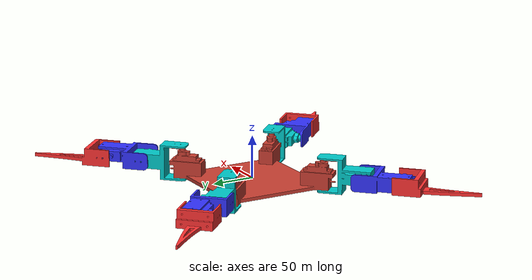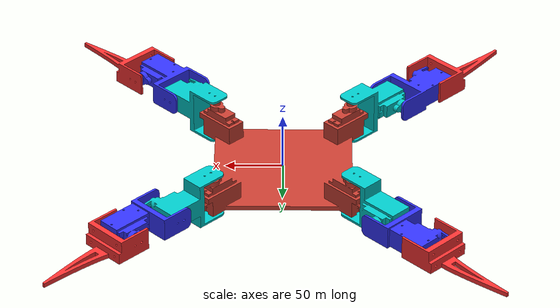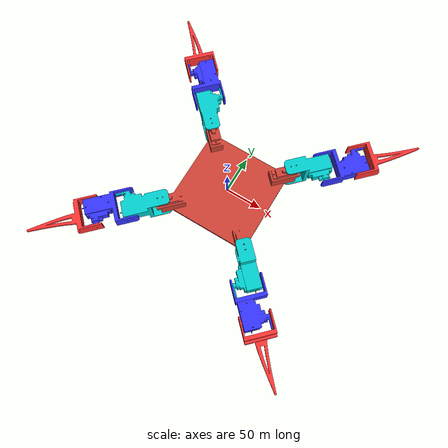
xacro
<?xml version="1.0"?>
<robot xmlns:xacro="http://www.ros.org/wiki/xacro" name="quadruped">

  <link name="world"></link>

  <joint name="base_joint" type="fixed">
    <parent link="world" />
    <child link="robot_base_link" />
    <origin xyz="0 0 0" rpy="0 0 0" />
    <axis xyz="1 0 0" />
  </joint>

  <link name="robot_base_link">
    <visual>
      <origin xyz="0 0 0" rpy="0 0 0" />
      <geometry>
        <mesh filename="file://$(find quadruped_description)/meshes/robot_base.stl" />
      </geometry>
      <material name="green">
        <color rgba="0.8 0.25 0.2 1" />
      </material>
    </visual>
    <collision>
      <origin xyz="0 0 0" rpy="0 0 0" />
      <geometry>
        <box size="120 120 24" />
      </geometry>q </collision>
    <inertial>
      <mass value="12" />
      <origin xyz="0 0 0" />
      <inertia ixx="2.26" ixy="0.0" ixz="0.0" iyy="6.26" iyz="0.0" izz="8.5" />
    </inertial>
  </link>

  <xacro:include filename="$(find quadruped_description)/urdf/mech/leg.urdf.xacro" />
  <xacro:leg parent="robot_base_link" uid="fr">
    <origin xyz="-58.77 58.981 12.432" rpy="0 0 ${-pi/4}"/>
  </xacro:leg>

  <xacro:include filename="$(find quadruped_description)/urdf/mech/leg.urdf.xacro" />
  <xacro:leg parent="robot_base_link" uid="fl">
    <origin xyz="58.77 58.981 12.432" rpy="0 0 ${-3*pi/4}"/>
  </xacro:leg>

  <xacro:include filename="$(find quadruped_description)/urdf/mech/leg.urdf.xacro" />
  <xacro:leg parent="robot_base_link" uid="br">
    <origin xyz="-58.77 -58.981 12.432" rpy="0 0 ${pi/4}"/>
  </xacro:leg>

  <xacro:include filename="$(find quadruped_description)/urdf/mech/leg.urdf.xacro" />
  <xacro:leg parent="robot_base_link" uid="bl">
    <origin xyz="58.77 -58.981 12.432" rpy="0 0 ${3*pi/4}"/>
  </xacro:leg>

</robot>

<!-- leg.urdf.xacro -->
<robot xmlns:xacro="http://www.ros.org/wiki/xacro">

  <xacro:macro name="leg" params="parent uid *origin">

    <joint name="body_link1_joint_${uid}" type="revolute">
      <parent link="${parent}"/>
      <child link="leg_${uid}_link_1" />
      <xacro:insert_block name="origin"/>
      <axis xyz="0 0 1" />
      <limit lower="${-pi/4}" upper="${pi/4}" effort="10000" velocity="10000" />
    </joint>

    <link name="leg_${uid}_link_1" type="revolute">
      <visual>
        <origin xyz="0.0 0.0 0.0"/>
        <geometry>
        <mesh filename="file://$(find quadruped_description)/meshes/link1.stl" />
      </geometry>
      <material name="cyan">
        <color rgba="0 0.8 0.8 1" />
      </material>
      </visual>
      <collision>
      <origin xyz="-30 0 0" rpy="0 0 0" />
      <geometry>
        <box size="60 12 24" />
      </geometry>
    </collision>
    <inertial>
      <mass value="4" />
      <origin xyz="0 0 0" />
      <inertia ixx="1.0" ixy="0.0" ixz="0.0" iyy="1.0" iyz="0.0" izz="1.0" />
    </inertial>
    </link>

    <joint name="leg_${uid}_joint_1" type="revolute">
      <origin xyz="-45.955 7.75 0.045" rpy="0.0 0.0 0.0"/>
      <parent link="leg_${uid}_link_1"/>
      <child link="leg_${uid}_link_2"/>
      <axis xyz="0.0 1.0 0.0"/>
      <limit lower="${-pi/4}" upper="${pi/4}" effort="0.0" velocity="0.0"/>
    </joint>

    <link name="leg_${uid}_link_2">
      <inertial>
        <origin xyz="0.0 0.0 0.0" rpy="0.0 0.0 0.0"/>
        <mass value="0.0"/>
        <inertia ixx="0.0" ixy="0.0" ixz="0.0" iyy="0.0" iyz="0.0" izz="0.0"/>
      </inertial>
      <visual name="">
        <origin xyz="0.0 0.0 0.0" rpy="0.0 0.0 0.0"/>
        <geometry>
          <mesh filename="file://$(find quadruped_description)/meshes/link2.stl" />
        </geometry>
        <material name="blue">
          <color rgba="0.2 0.2 1.0 1.0"/>
          <texture filename=""/>
        </material>
      </visual>
      <collision>
        <origin xyz="-40 0.0 0.0" rpy="0.0 0.0 0.0"/>
        <geometry>
          <box size="42 12 24" />
        </geometry>
      </collision>
    </link>

    <joint name="leg_${uid}_joint_2" type="revolute">
      <parent link="leg_${uid}_link_2" />
      <child link="leg_${uid}_feet" />
      <origin xyz="-46.905 0 0.045" rpy="0 0 0" />
      <axis xyz="0 1 0" />
      <limit lower="${-2*pi/3}" upper="${pi/4}" effort="100" velocity="100" />
    </joint>

    <link name="leg_${uid}_feet">
      <visual>
        <origin xyz="0 0 0" rpy="0 0 0" />
        <geometry>
          <mesh filename="file://$(find quadruped_description)/meshes/link3.stl" />
        </geometry>
        <material name="red">
          <color rgba="1 0.2 0.2 1" />
        </material>
      </visual>
      <collision>
        <origin xyz="-56 0 -5" rpy="0 0 0" />
        <geometry>
          <box size="67 12 12" />
        </geometry>
      </collision>
      <inertial>
        <mass value="1.0" />
        <origin xyz="0 0 0" />
        <inertia ixx="1.0" ixy="0.0" ixz="0.0" iyy="1.0" iyz="0.0" izz="1.0" />
      </inertial>
    </link>

  </xacro:macro>

</robot>
